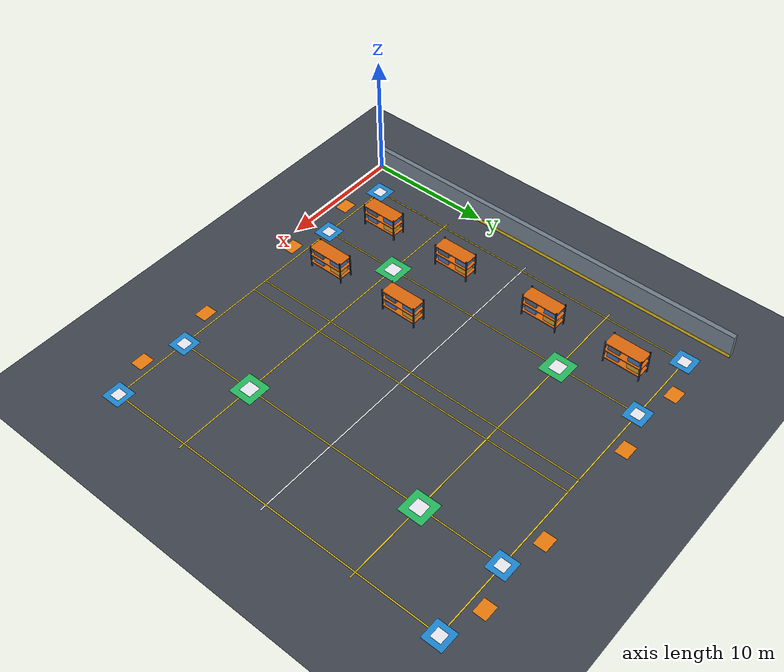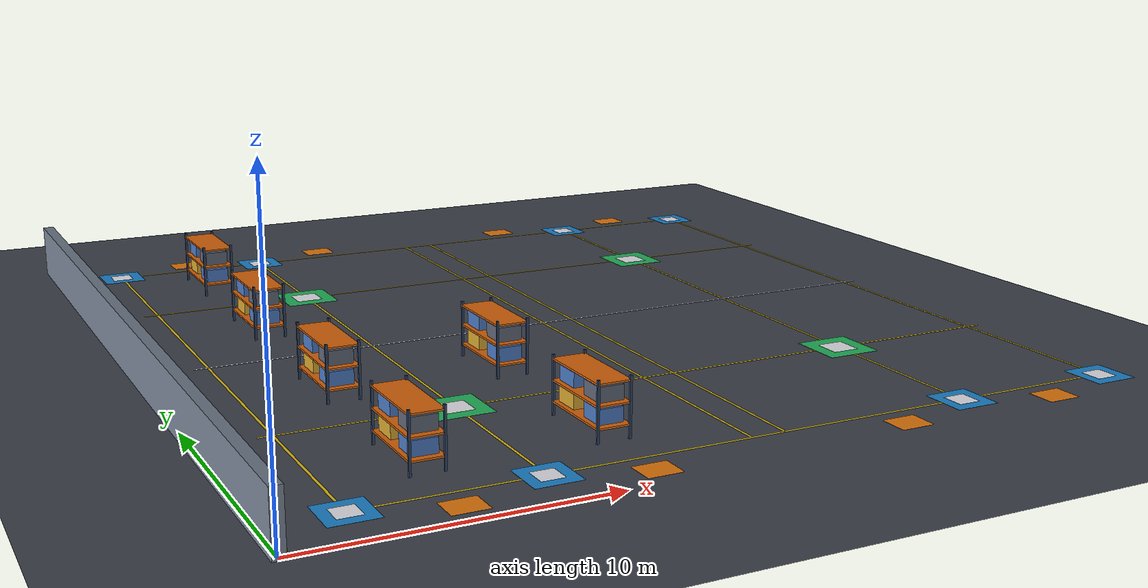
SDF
<sdf version="1.8">
 <world name="warehouse_m9_v1">
  <model name="ground_plane">
   <static>true</static>
   <pose>16.0 16.0 0.0 0 0 0</pose>
   <link name="floor_link">
    <collision name="collision">
     <geometry><plane><normal>0 0 1</normal><size>40 40</size></plane></geometry>
     <surface><friction><ode><mu>100</mu><mu2>50</mu2></ode></friction></surface>
    </collision>
    <visual name="floor_visual">
     <geometry><plane><normal>0 0 1</normal><size>40 40</size></plane></geometry>
     <material>
      <ambient>0.22 0.24 0.27 1.0</ambient>
      <diffuse>0.26 0.28 0.32 1.0</diffuse>
      <specular>0.45 0.45 0.50 1.0</specular>
     </material>
    </visual>
   </link>
  </model>
  <model name="wall_west">
   <static>true</static>
   <pose>0.0 16.0 1.0 0 0 0</pose>
   <link name="link">
    <collision name="col"><geometry><box><size>0.4 32.4 2.0</size></box></geometry></collision>
    <visual name="wall_vis">
     <geometry><box><size>0.4 32.4 2.0</size></box></geometry>
     <material><ambient>0.40 0.44 0.50 1.0</ambient><diffuse>0.45 0.50 0.56 1.0</diffuse></material>
    </visual>
    <visual name="kickplate">
     <pose>0.201 0.0 -0.85 0 0 0</pose>
     <geometry><box><size>0.02 32.38 0.30</size></box></geometry>
     <material><ambient>0.85 0.70 0.10 1.0</ambient><diffuse>0.90 0.75 0.10 1.0</diffuse></material>
    </visual>
   </link>
  </model>
  <model name="operational_zones">
   <static>true</static>
   <pose>0 0 0.003 0 0 0</pose>
   <link name="zones_link">
    <visual name="pickup_1_pad">
     <pose>2.5 2.0 0 0 0 0</pose>
     <geometry><box><size>1.6 1.6 0.002</size></box></geometry>
     <material><ambient>0.10 0.45 0.75 1.0</ambient><diffuse>0.12 0.55 0.85 1.0</diffuse></material>
    </visual>
    <visual name="pickup_1_target">
     <pose>2.5 2.0 0.001 0 0 0</pose>
     <geometry><box><size>0.80 0.80 0.002</size></box></geometry>
     <material><ambient>0.90 0.90 0.95 1.0</ambient><diffuse>0.95 0.95 0.98 1.0</diffuse></material>
    </visual>
    <visual name="pickup_2_pad">
     <pose>8.5 2.0 0 0 0 0</pose>
     <geometry><box><size>1.6 1.6 0.002</size></box></geometry>
     <material><ambient>0.10 0.45 0.75 1.0</ambient><diffuse>0.12 0.55 0.85 1.0</diffuse></material>
    </visual>
    <visual name="pickup_2_target">
     <pose>8.5 2.0 0.001 0 0 0</pose>
     <geometry><box><size>0.80 0.80 0.002</size></box></geometry>
     <material><ambient>0.90 0.90 0.95 1.0</ambient><diffuse>0.95 0.95 0.98 1.0</diffuse></material>
    </visual>
    <visual name="pickup_3_pad">
     <pose>23.5 2.0 0 0 0 0</pose>
     <geometry><box><size>1.6 1.6 0.002</size></box></geometry>
     <material><ambient>0.10 0.45 0.75 1.0</ambient><diffuse>0.12 0.55 0.85 1.0</diffuse></material>
    </visual>
    <visual name="pickup_3_target">
     <pose>23.5 2.0 0.001 0 0 0</pose>
     <geometry><box><size>0.80 0.80 0.002</size></box></geometry>
     <material><ambient>0.90 0.90 0.95 1.0</ambient><diffuse>0.95 0.95 0.98 1.0</diffuse></material>
    </visual>
    <visual name="pickup_4_pad">
     <pose>29.5 2.0 0 0 0 0</pose>
     <geometry><box><size>1.6 1.6 0.002</size></box></geometry>
     <material><ambient>0.10 0.45 0.75 1.0</ambient><diffuse>0.12 0.55 0.85 1.0</diffuse></material>
    </visual>
    <visual name="pickup_4_target">
     <pose>29.5 2.0 0.001 0 0 0</pose>
     <geometry><box><size>0.80 0.80 0.002</size></box></geometry>
     <material><ambient>0.90 0.90 0.95 1.0</ambient><diffuse>0.95 0.95 0.98 1.0</diffuse></material>
    </visual>
    <visual name="pickup_5_pad">
     <pose>2.5 30.0 0 0 0 0</pose>
     <geometry><box><size>1.6 1.6 0.002</size></box></geometry>
     <material><ambient>0.10 0.45 0.75 1.0</ambient><diffuse>0.12 0.55 0.85 1.0</diffuse></material>
    </visual>
    <visual name="pickup_5_target">
     <pose>2.5 30.0 0.001 0 0 0</pose>
     <geometry><box><size>0.80 0.80 0.002</size></box></geometry>
     <material><ambient>0.90 0.90 0.95 1.0</ambient><diffuse>0.95 0.95 0.98 1.0</diffuse></material>
    </visual>
    <visual name="pickup_6_pad">
     <pose>8.5 30.0 0 0 0 0</pose>
     <geometry><box><size>1.6 1.6 0.002</size></box></geometry>
     <material><ambient>0.10 0.45 0.75 1.0</ambient><diffuse>0.12 0.55 0.85 1.0</diffuse></material>
    </visual>
    <visual name="pickup_6_target">
     <pose>8.5 30.0 0.001 0 0 0</pose>
     <geometry><box><size>0.80 0.80 0.002</size></box></geometry>
     <material><ambient>0.90 0.90 0.95 1.0</ambient><diffuse>0.95 0.95 0.98 1.0</diffuse></material>
    </visual>
    <visual name="pickup_7_pad">
     <pose>23.5 30.0 0 0 0 0</pose>
     <geometry><box><size>1.6 1.6 0.002</size></box></geometry>
     <material><ambient>0.10 0.45 0.75 1.0</ambient><diffuse>0.12 0.55 0.85 1.0</diffuse></material>
    </visual>
    <visual name="pickup_7_target">
     <pose>23.5 30.0 0.001 0 0 0</pose>
     <geometry><box><size>0.80 0.80 0.002</size></box></geometry>
     <material><ambient>0.90 0.90 0.95 1.0</ambient><diffuse>0.95 0.95 0.98 1.0</diffuse></material>
    </visual>
    <visual name="pickup_8_pad">
     <pose>29.5 30.0 0 0 0 0</pose>
     <geometry><box><size>1.6 1.6 0.002</size></box></geometry>
     <material><ambient>0.10 0.45 0.75 1.0</ambient><diffuse>0.12 0.55 0.85 1.0</diffuse></material>
    </visual>
    <visual name="pickup_8_target">
     <pose>29.5 30.0 0.001 0 0 0</pose>
     <geometry><box><size>0.80 0.80 0.002</size></box></geometry>
     <material><ambient>0.90 0.90 0.95 1.0</ambient><diffuse>0.95 0.95 0.98 1.0</diffuse></material>
    </visual>
    <visual name="dropoff_1_zone">
     <pose>8.5 8.5 0 0 0 0</pose>
     <geometry><box><size>2.0 2.0 0.002</size></box></geometry>
     <material><ambient>0.12 0.65 0.32 1.0</ambient><diffuse>0.15 0.75 0.38 1.0</diffuse></material>
    </visual>
    <visual name="dropoff_1_center">
     <pose>8.5 8.5 0.001 0 0 0</pose>
     <geometry><box><size>1.0 1.0 0.002</size></box></geometry>
     <material><ambient>0.90 0.90 0.92 1.0</ambient><diffuse>0.95 0.95 0.98 1.0</diffuse></material>
    </visual>
    <visual name="dropoff_2_zone">
     <pose>8.5 23.5 0 0 0 0</pose>
     <geometry><box><size>2.0 2.0 0.002</size></box></geometry>
     <material><ambient>0.12 0.65 0.32 1.0</ambient><diffuse>0.15 0.75 0.38 1.0</diffuse></material>
    </visual>
    <visual name="dropoff_2_center">
     <pose>8.5 23.5 0.001 0 0 0</pose>
     <geometry><box><size>1.0 1.0 0.002</size></box></geometry>
     <material><ambient>0.90 0.90 0.92 1.0</ambient><diffuse>0.95 0.95 0.98 1.0</diffuse></material>
    </visual>
    <visual name="dropoff_3_zone">
     <pose>23.5 8.5 0 0 0 0</pose>
     <geometry><box><size>2.0 2.0 0.002</size></box></geometry>
     <material><ambient>0.12 0.65 0.32 1.0</ambient><diffuse>0.15 0.75 0.38 1.0</diffuse></material>
    </visual>
    <visual name="dropoff_3_center">
     <pose>23.5 8.5 0.001 0 0 0</pose>
     <geometry><box><size>1.0 1.0 0.002</size></box></geometry>
     <material><ambient>0.90 0.90 0.92 1.0</ambient><diffuse>0.95 0.95 0.98 1.0</diffuse></material>
    </visual>
    <visual name="dropoff_4_zone">
     <pose>23.5 23.5 0 0 0 0</pose>
     <geometry><box><size>2.0 2.0 0.002</size></box></geometry>
     <material><ambient>0.12 0.65 0.32 1.0</ambient><diffuse>0.15 0.75 0.38 1.0</diffuse></material>
    </visual>
    <visual name="dropoff_4_center">
     <pose>23.5 23.5 0.001 0 0 0</pose>
     <geometry><box><size>1.0 1.0 0.002</size></box></geometry>
     <material><ambient>0.90 0.90 0.92 1.0</ambient><diffuse>0.95 0.95 0.98 1.0</diffuse></material>
    </visual>
    <visual name="charge_pad_1">
     <pose>5.5 1.0 0 0 0 0</pose>
     <geometry><box><size>1.2 1.0 0.002</size></box></geometry>
     <material><ambient>0.85 0.45 0.05 1.0</ambient><diffuse>0.95 0.50 0.05 1.0</diffuse></material>
    </visual>
    <visual name="charge_pad_2">
     <pose>11.5 1.0 0 0 0 0</pose>
     <geometry><box><size>1.2 1.0 0.002</size></box></geometry>
     <material><ambient>0.85 0.45 0.05 1.0</ambient><diffuse>0.95 0.50 0.05 1.0</diffuse></material>
    </visual>
    <visual name="charge_pad_3">
     <pose>20.5 1.0 0 0 0 0</pose>
     <geometry><box><size>1.2 1.0 0.002</size></box></geometry>
     <material><ambient>0.85 0.45 0.05 1.0</ambient><diffuse>0.95 0.50 0.05 1.0</diffuse></material>
    </visual>
    <visual name="charge_pad_4">
     <pose>26.5 1.0 0 0 0 0</pose>
     <geometry><box><size>1.2 1.0 0.002</size></box></geometry>
     <material><ambient>0.85 0.45 0.05 1.0</ambient><diffuse>0.95 0.50 0.05 1.0</diffuse></material>
    </visual>
    <visual name="charge_pad_5">
     <pose>5.5 31.0 0 0 0 0</pose>
     <geometry><box><size>1.2 1.0 0.002</size></box></geometry>
     <material><ambient>0.85 0.45 0.05 1.0</ambient><diffuse>0.95 0.50 0.05 1.0</diffuse></material>
    </visual>
    <visual name="charge_pad_6">
     <pose>11.5 31.0 0 0 0 0</pose>
     <geometry><box><size>1.2 1.0 0.002</size></box></geometry>
     <material><ambient>0.85 0.45 0.05 1.0</ambient><diffuse>0.95 0.50 0.05 1.0</diffuse></material>
    </visual>
    <visual name="charge_pad_7">
     <pose>20.5 31.0 0 0 0 0</pose>
     <geometry><box><size>1.2 1.0 0.002</size></box></geometry>
     <material><ambient>0.85 0.45 0.05 1.0</ambient><diffuse>0.95 0.50 0.05 1.0</diffuse></material>
    </visual>
    <visual name="charge_pad_8">
     <pose>26.5 31.0 0 0 0 0</pose>
     <geometry><box><size>1.2 1.0 0.002</size></box></geometry>
     <material><ambient>0.85 0.45 0.05 1.0</ambient><diffuse>0.95 0.50 0.05 1.0</diffuse></material>
    </visual>
   </link>
  </model>
  <model name="warehouse_lanes">
   <static>true</static>
   <pose>0 0 0.002 0 0 0</pose>
   <link name="markings_link">
    <visual name="lane_aisle_1">
     <pose>2.5 16.0 0 0 0 0</pose>
     <geometry><box><size>0.10 28.0 0.001</size></box></geometry>
     <material><ambient>0.88 0.72 0.08 1.0</ambient><diffuse>0.92 0.78 0.10 1.0</diffuse></material>
    </visual>
    <visual name="lane_aisle_2">
     <pose>8.5 16.0 0 0 0 0</pose>
     <geometry><box><size>0.10 28.0 0.001</size></box></geometry>
     <material><ambient>0.88 0.72 0.08 1.0</ambient><diffuse>0.92 0.78 0.10 1.0</diffuse></material>
    </visual>
    <visual name="lane_aisle_3_left">
     <pose>15.4 16.0 0 0 0 0</pose>
     <geometry><box><size>0.10 28.0 0.001</size></box></geometry>
     <material><ambient>0.88 0.72 0.08 1.0</ambient><diffuse>0.92 0.78 0.10 1.0</diffuse></material>
    </visual>
    <visual name="lane_aisle_3_right">
     <pose>16.6 16.0 0 0 0 0</pose>
     <geometry><box><size>0.10 28.0 0.001</size></box></geometry>
     <material><ambient>0.88 0.72 0.08 1.0</ambient><diffuse>0.92 0.78 0.10 1.0</diffuse></material>
    </visual>
    <visual name="lane_aisle_4">
     <pose>23.5 16.0 0 0 0 0</pose>
     <geometry><box><size>0.10 28.0 0.001</size></box></geometry>
     <material><ambient>0.88 0.72 0.08 1.0</ambient><diffuse>0.92 0.78 0.10 1.0</diffuse></material>
    </visual>
    <visual name="lane_aisle_5">
     <pose>29.5 16.0 0 0 0 0</pose>
     <geometry><box><size>0.10 28.0 0.001</size></box></geometry>
     <material><ambient>0.88 0.72 0.08 1.0</ambient><diffuse>0.92 0.78 0.10 1.0</diffuse></material>
    </visual>
    <visual name="cross_south">
     <pose>16.0 2.0 0 0 0 0</pose>
     <geometry><box><size>28.0 0.10 0.001</size></box></geometry>
     <material><ambient>0.88 0.72 0.08 1.0</ambient><diffuse>0.92 0.78 0.10 1.0</diffuse></material>
    </visual>
    <visual name="cross_mid_south">
     <pose>16.0 8.5 0 0 0 0</pose>
     <geometry><box><size>28.0 0.10 0.001</size></box></geometry>
     <material><ambient>0.88 0.72 0.08 1.0</ambient><diffuse>0.92 0.78 0.10 1.0</diffuse></material>
    </visual>
    <visual name="cross_center">
     <pose>16.0 16.0 0 0 0 0</pose>
     <geometry><box><size>28.0 0.10 0.001</size></box></geometry>
     <material><ambient>0.90 0.90 0.92 1.0</ambient><diffuse>0.95 0.95 0.98 1.0</diffuse></material>
    </visual>
    <visual name="cross_mid_north">
     <pose>16.0 23.5 0 0 0 0</pose>
     <geometry><box><size>28.0 0.10 0.001</size></box></geometry>
     <material><ambient>0.88 0.72 0.08 1.0</ambient><diffuse>0.92 0.78 0.10 1.0</diffuse></material>
    </visual>
    <visual name="cross_north">
     <pose>16.0 30.0 0 0 0 0</pose>
     <geometry><box><size>28.0 0.10 0.001</size></box></geometry>
     <material><ambient>0.88 0.72 0.08 1.0</ambient><diffuse>0.92 0.78 0.10 1.0</diffuse></material>
    </visual>
   </link>
  </model>
  <model name="rack_1">
   <static>true</static>
   <pose>5.5 5.0 1.0 0 0 0</pose>
   <link name="link">
    <collision name="col"><geometry><box><size>1.2 3.0 2.0</size></box></geometry></collision>
    <visual name="frame_fl">
     <pose>-0.55 -1.45 0 0 0 0</pose>
     <geometry><box><size>0.08 0.08 2.0</size></box></geometry>
     <material><ambient>0.15 0.22 0.32 1.0</ambient><diffuse>0.18 0.26 0.38 1.0</diffuse></material>
    </visual>
    <visual name="frame_fr">
     <pose>0.55 -1.45 0 0 0 0</pose>
     <geometry><box><size>0.08 0.08 2.0</size></box></geometry>
     <material><ambient>0.15 0.22 0.32 1.0</ambient><diffuse>0.18 0.26 0.38 1.0</diffuse></material>
    </visual>
    <visual name="frame_rl">
     <pose>-0.55 1.45 0 0 0 0</pose>
     <geometry><box><size>0.08 0.08 2.0</size></box></geometry>
     <material><ambient>0.15 0.22 0.32 1.0</ambient><diffuse>0.18 0.26 0.38 1.0</diffuse></material>
    </visual>
    <visual name="frame_rr">
     <pose>0.55 1.45 0 0 0 0</pose>
     <geometry><box><size>0.08 0.08 2.0</size></box></geometry>
     <material><ambient>0.15 0.22 0.32 1.0</ambient><diffuse>0.18 0.26 0.38 1.0</diffuse></material>
    </visual>
    <visual name="shelf_tier1">
     <pose>0 0 -0.55 0 0 0</pose>
     <geometry><box><size>1.16 2.96 0.06</size></box></geometry>
     <material><ambient>0.85 0.38 0.05 1.0</ambient><diffuse>0.90 0.42 0.05 1.0</diffuse></material>
    </visual>
    <visual name="shelf_tier2">
     <pose>0 0 0.15 0 0 0</pose>
     <geometry><box><size>1.16 2.96 0.06</size></box></geometry>
     <material><ambient>0.85 0.38 0.05 1.0</ambient><diffuse>0.90 0.42 0.05 1.0</diffuse></material>
    </visual>
    <visual name="shelf_tier3">
     <pose>0 0 0.85 0 0 0</pose>
     <geometry><box><size>1.16 2.96 0.06</size></box></geometry>
     <material><ambient>0.85 0.38 0.05 1.0</ambient><diffuse>0.90 0.42 0.05 1.0</diffuse></material>
    </visual>
    <visual name="cargo_1">
     <pose>0 -0.8 -0.25 0 0 0</pose>
     <geometry><box><size>0.85 0.95 0.50</size></box></geometry>
     <material><ambient>0.25 0.40 0.65 1.0</ambient><diffuse>0.28 0.45 0.72 1.0</diffuse></material>
    </visual>
    <visual name="cargo_2">
     <pose>0 0.8 -0.25 0 0 0</pose>
     <geometry><box><size>0.85 0.95 0.50</size></box></geometry>
     <material><ambient>0.70 0.55 0.15 1.0</ambient><diffuse>0.80 0.62 0.18 1.0</diffuse></material>
    </visual>
    <visual name="cargo_3">
     <pose>0 -0.8 0.45 0 0 0</pose>
     <geometry><box><size>0.85 0.95 0.50</size></box></geometry>
     <material><ambient>0.30 0.34 0.38 1.0</ambient><diffuse>0.35 0.38 0.44 1.0</diffuse></material>
    </visual>
    <visual name="cargo_4">
     <pose>0 0.8 0.45 0 0 0</pose>
     <geometry><box><size>0.85 0.95 0.50</size></box></geometry>
     <material><ambient>0.25 0.40 0.65 1.0</ambient><diffuse>0.28 0.45 0.72 1.0</diffuse></material>
    </visual>
   </link>
  </model>
  <model name="rack_2">
   <static>true</static>
   <pose>11.5 5.0 1.0 0 0 0</pose>
   <link name="link">
    <collision name="col"><geometry><box><size>1.2 3.0 2.0</size></box></geometry></collision>
    <visual name="frame_fl">
     <pose>-0.55 -1.45 0 0 0 0</pose>
     <geometry><box><size>0.08 0.08 2.0</size></box></geometry>
     <material><ambient>0.15 0.22 0.32 1.0</ambient><diffuse>0.18 0.26 0.38 1.0</diffuse></material>
    </visual>
    <visual name="frame_fr">
     <pose>0.55 -1.45 0 0 0 0</pose>
     <geometry><box><size>0.08 0.08 2.0</size></box></geometry>
     <material><ambient>0.15 0.22 0.32 1.0</ambient><diffuse>0.18 0.26 0.38 1.0</diffuse></material>
    </visual>
    <visual name="frame_rl">
     <pose>-0.55 1.45 0 0 0 0</pose>
     <geometry><box><size>0.08 0.08 2.0</size></box></geometry>
     <material><ambient>0.15 0.22 0.32 1.0</ambient><diffuse>0.18 0.26 0.38 1.0</diffuse></material>
    </visual>
    <visual name="frame_rr">
     <pose>0.55 1.45 0 0 0 0</pose>
     <geometry><box><size>0.08 0.08 2.0</size></box></geometry>
     <material><ambient>0.15 0.22 0.32 1.0</ambient><diffuse>0.18 0.26 0.38 1.0</diffuse></material>
    </visual>
    <visual name="shelf_tier1">
     <pose>0 0 -0.55 0 0 0</pose>
     <geometry><box><size>1.16 2.96 0.06</size></box></geometry>
     <material><ambient>0.85 0.38 0.05 1.0</ambient><diffuse>0.90 0.42 0.05 1.0</diffuse></material>
    </visual>
    <visual name="shelf_tier2">
     <pose>0 0 0.15 0 0 0</pose>
     <geometry><box><size>1.16 2.96 0.06</size></box></geometry>
     <material><ambient>0.85 0.38 0.05 1.0</ambient><diffuse>0.90 0.42 0.05 1.0</diffuse></material>
    </visual>
    <visual name="shelf_tier3">
     <pose>0 0 0.85 0 0 0</pose>
     <geometry><box><size>1.16 2.96 0.06</size></box></geometry>
     <material><ambient>0.85 0.38 0.05 1.0</ambient><diffuse>0.90 0.42 0.05 1.0</diffuse></material>
    </visual>
    <visual name="cargo_1">
     <pose>0 -0.8 -0.25 0 0 0</pose>
     <geometry><box><size>0.85 0.95 0.50</size></box></geometry>
     <material><ambient>0.25 0.40 0.65 1.0</ambient><diffuse>0.28 0.45 0.72 1.0</diffuse></material>
    </visual>
    <visual name="cargo_2">
     <pose>0 0.8 -0.25 0 0 0</pose>
     <geometry><box><size>0.85 0.95 0.50</size></box></geometry>
     <material><ambient>0.70 0.55 0.15 1.0</ambient><diffuse>0.80 0.62 0.18 1.0</diffuse></material>
    </visual>
    <visual name="cargo_3">
     <pose>0 -0.8 0.45 0 0 0</pose>
     <geometry><box><size>0.85 0.95 0.50</size></box></geometry>
     <material><ambient>0.30 0.34 0.38 1.0</ambient><diffuse>0.35 0.38 0.44 1.0</diffuse></material>
    </visual>
    <visual name="cargo_4">
     <pose>0 0.8 0.45 0 0 0</pose>
     <geometry><box><size>0.85 0.95 0.50</size></box></geometry>
     <material><ambient>0.25 0.40 0.65 1.0</ambient><diffuse>0.28 0.45 0.72 1.0</diffuse></material>
    </visual>
   </link>
  </model>
  <model name="rack_5">
   <static>true</static>
   <pose>5.5 12.0 1.0 0 0 0</pose>
   <link name="link">
    <collision name="col"><geometry><box><size>1.2 3.0 2.0</size></box></geometry></collision>
    <visual name="frame_fl">
     <pose>-0.55 -1.45 0 0 0 0</pose>
     <geometry><box><size>0.08 0.08 2.0</size></box></geometry>
     <material><ambient>0.15 0.22 0.32 1.0</ambient><diffuse>0.18 0.26 0.38 1.0</diffuse></material>
    </visual>
    <visual name="frame_fr">
     <pose>0.55 -1.45 0 0 0 0</pose>
     <geometry><box><size>0.08 0.08 2.0</size></box></geometry>
     <material><ambient>0.15 0.22 0.32 1.0</ambient><diffuse>0.18 0.26 0.38 1.0</diffuse></material>
    </visual>
    <visual name="frame_rl">
     <pose>-0.55 1.45 0 0 0 0</pose>
     <geometry><box><size>0.08 0.08 2.0</size></box></geometry>
     <material><ambient>0.15 0.22 0.32 1.0</ambient><diffuse>0.18 0.26 0.38 1.0</diffuse></material>
    </visual>
    <visual name="frame_rr">
     <pose>0.55 1.45 0 0 0 0</pose>
     <geometry><box><size>0.08 0.08 2.0</size></box></geometry>
     <material><ambient>0.15 0.22 0.32 1.0</ambient><diffuse>0.18 0.26 0.38 1.0</diffuse></material>
    </visual>
    <visual name="shelf_tier1">
     <pose>0 0 -0.55 0 0 0</pose>
     <geometry><box><size>1.16 2.96 0.06</size></box></geometry>
     <material><ambient>0.85 0.38 0.05 1.0</ambient><diffuse>0.90 0.42 0.05 1.0</diffuse></material>
    </visual>
    <visual name="shelf_tier2">
     <pose>0 0 0.15 0 0 0</pose>
     <geometry><box><size>1.16 2.96 0.06</size></box></geometry>
     <material><ambient>0.85 0.38 0.05 1.0</ambient><diffuse>0.90 0.42 0.05 1.0</diffuse></material>
    </visual>
    <visual name="shelf_tier3">
     <pose>0 0 0.85 0 0 0</pose>
     <geometry><box><size>1.16 2.96 0.06</size></box></geometry>
     <material><ambient>0.85 0.38 0.05 1.0</ambient><diffuse>0.90 0.42 0.05 1.0</diffuse></material>
    </visual>
    <visual name="cargo_1">
     <pose>0 -0.8 -0.25 0 0 0</pose>
     <geometry><box><size>0.85 0.95 0.50</size></box></geometry>
     <material><ambient>0.25 0.40 0.65 1.0</ambient><diffuse>0.28 0.45 0.72 1.0</diffuse></material>
    </visual>
    <visual name="cargo_2">
     <pose>0 0.8 -0.25 0 0 0</pose>
     <geometry><box><size>0.85 0.95 0.50</size></box></geometry>
     <material><ambient>0.70 0.55 0.15 1.0</ambient><diffuse>0.80 0.62 0.18 1.0</diffuse></material>
    </visual>
    <visual name="cargo_3">
     <pose>0 -0.8 0.45 0 0 0</pose>
     <geometry><box><size>0.85 0.95 0.50</size></box></geometry>
     <material><ambient>0.30 0.34 0.38 1.0</ambient><diffuse>0.35 0.38 0.44 1.0</diffuse></material>
    </visual>
    <visual name="cargo_4">
     <pose>0 0.8 0.45 0 0 0</pose>
     <geometry><box><size>0.85 0.95 0.50</size></box></geometry>
     <material><ambient>0.25 0.40 0.65 1.0</ambient><diffuse>0.28 0.45 0.72 1.0</diffuse></material>
    </visual>
   </link>
  </model>
  <model name="rack_6">
   <static>true</static>
   <pose>11.5 12.0 1.0 0 0 0</pose>
   <link name="link">
    <collision name="col"><geometry><box><size>1.2 3.0 2.0</size></box></geometry></collision>
    <visual name="frame_fl">
     <pose>-0.55 -1.45 0 0 0 0</pose>
     <geometry><box><size>0.08 0.08 2.0</size></box></geometry>
     <material><ambient>0.15 0.22 0.32 1.0</ambient><diffuse>0.18 0.26 0.38 1.0</diffuse></material>
    </visual>
    <visual name="frame_fr">
     <pose>0.55 -1.45 0 0 0 0</pose>
     <geometry><box><size>0.08 0.08 2.0</size></box></geometry>
     <material><ambient>0.15 0.22 0.32 1.0</ambient><diffuse>0.18 0.26 0.38 1.0</diffuse></material>
    </visual>
    <visual name="frame_rl">
     <pose>-0.55 1.45 0 0 0 0</pose>
     <geometry><box><size>0.08 0.08 2.0</size></box></geometry>
     <material><ambient>0.15 0.22 0.32 1.0</ambient><diffuse>0.18 0.26 0.38 1.0</diffuse></material>
    </visual>
    <visual name="frame_rr">
     <pose>0.55 1.45 0 0 0 0</pose>
     <geometry><box><size>0.08 0.08 2.0</size></box></geometry>
     <material><ambient>0.15 0.22 0.32 1.0</ambient><diffuse>0.18 0.26 0.38 1.0</diffuse></material>
    </visual>
    <visual name="shelf_tier1">
     <pose>0 0 -0.55 0 0 0</pose>
     <geometry><box><size>1.16 2.96 0.06</size></box></geometry>
     <material><ambient>0.85 0.38 0.05 1.0</ambient><diffuse>0.90 0.42 0.05 1.0</diffuse></material>
    </visual>
    <visual name="shelf_tier2">
     <pose>0 0 0.15 0 0 0</pose>
     <geometry><box><size>1.16 2.96 0.06</size></box></geometry>
     <material><ambient>0.85 0.38 0.05 1.0</ambient><diffuse>0.90 0.42 0.05 1.0</diffuse></material>
    </visual>
    <visual name="shelf_tier3">
     <pose>0 0 0.85 0 0 0</pose>
     <geometry><box><size>1.16 2.96 0.06</size></box></geometry>
     <material><ambient>0.85 0.38 0.05 1.0</ambient><diffuse>0.90 0.42 0.05 1.0</diffuse></material>
    </visual>
    <visual name="cargo_1">
     <pose>0 -0.8 -0.25 0 0 0</pose>
     <geometry><box><size>0.85 0.95 0.50</size></box></geometry>
     <material><ambient>0.25 0.40 0.65 1.0</ambient><diffuse>0.28 0.45 0.72 1.0</diffuse></material>
    </visual>
    <visual name="cargo_2">
     <pose>0 0.8 -0.25 0 0 0</pose>
     <geometry><box><size>0.85 0.95 0.50</size></box></geometry>
     <material><ambient>0.70 0.55 0.15 1.0</ambient><diffuse>0.80 0.62 0.18 1.0</diffuse></material>
    </visual>
    <visual name="cargo_3">
     <pose>0 -0.8 0.45 0 0 0</pose>
     <geometry><box><size>0.85 0.95 0.50</size></box></geometry>
     <material><ambient>0.30 0.34 0.38 1.0</ambient><diffuse>0.35 0.38 0.44 1.0</diffuse></material>
    </visual>
    <visual name="cargo_4">
     <pose>0 0.8 0.45 0 0 0</pose>
     <geometry><box><size>0.85 0.95 0.50</size></box></geometry>
     <material><ambient>0.25 0.40 0.65 1.0</ambient><diffuse>0.28 0.45 0.72 1.0</diffuse></material>
    </visual>
   </link>
  </model>
  <model name="rack_9">
   <static>true</static>
   <pose>5.5 20.0 1.0 0 0 0</pose>
   <link name="link">
    <collision name="col"><geometry><box><size>1.2 3.0 2.0</size></box></geometry></collision>
    <visual name="frame_fl">
     <pose>-0.55 -1.45 0 0 0 0</pose>
     <geometry><box><size>0.08 0.08 2.0</size></box></geometry>
     <material><ambient>0.15 0.22 0.32 1.0</ambient><diffuse>0.18 0.26 0.38 1.0</diffuse></material>
    </visual>
    <visual name="frame_fr">
     <pose>0.55 -1.45 0 0 0 0</pose>
     <geometry><box><size>0.08 0.08 2.0</size></box></geometry>
     <material><ambient>0.15 0.22 0.32 1.0</ambient><diffuse>0.18 0.26 0.38 1.0</diffuse></material>
    </visual>
    <visual name="frame_rl">
     <pose>-0.55 1.45 0 0 0 0</pose>
     <geometry><box><size>0.08 0.08 2.0</size></box></geometry>
     <material><ambient>0.15 0.22 0.32 1.0</ambient><diffuse>0.18 0.26 0.38 1.0</diffuse></material>
    </visual>
    <visual name="frame_rr">
     <pose>0.55 1.45 0 0 0 0</pose>
     <geometry><box><size>0.08 0.08 2.0</size></box></geometry>
     <material><ambient>0.15 0.22 0.32 1.0</ambient><diffuse>0.18 0.26 0.38 1.0</diffuse></material>
    </visual>
    <visual name="shelf_tier1">
     <pose>0 0 -0.55 0 0 0</pose>
     <geometry><box><size>1.16 2.96 0.06</size></box></geometry>
     <material><ambient>0.85 0.38 0.05 1.0</ambient><diffuse>0.90 0.42 0.05 1.0</diffuse></material>
    </visual>
    <visual name="shelf_tier2">
     <pose>0 0 0.15 0 0 0</pose>
     <geometry><box><size>1.16 2.96 0.06</size></box></geometry>
     <material><ambient>0.85 0.38 0.05 1.0</ambient><diffuse>0.90 0.42 0.05 1.0</diffuse></material>
    </visual>
    <visual name="shelf_tier3">
     <pose>0 0 0.85 0 0 0</pose>
     <geometry><box><size>1.16 2.96 0.06</size></box></geometry>
     <material><ambient>0.85 0.38 0.05 1.0</ambient><diffuse>0.90 0.42 0.05 1.0</diffuse></material>
    </visual>
    <visual name="cargo_1">
     <pose>0 -0.8 -0.25 0 0 0</pose>
     <geometry><box><size>0.85 0.95 0.50</size></box></geometry>
     <material><ambient>0.25 0.40 0.65 1.0</ambient><diffuse>0.28 0.45 0.72 1.0</diffuse></material>
    </visual>
    <visual name="cargo_2">
     <pose>0 0.8 -0.25 0 0 0</pose>
     <geometry><box><size>0.85 0.95 0.50</size></box></geometry>
     <material><ambient>0.70 0.55 0.15 1.0</ambient><diffuse>0.80 0.62 0.18 1.0</diffuse></material>
    </visual>
    <visual name="cargo_3">
     <pose>0 -0.8 0.45 0 0 0</pose>
     <geometry><box><size>0.85 0.95 0.50</size></box></geometry>
     <material><ambient>0.30 0.34 0.38 1.0</ambient><diffuse>0.35 0.38 0.44 1.0</diffuse></material>
    </visual>
    <visual name="cargo_4">
     <pose>0 0.8 0.45 0 0 0</pose>
     <geometry><box><size>0.85 0.95 0.50</size></box></geometry>
     <material><ambient>0.25 0.40 0.65 1.0</ambient><diffuse>0.28 0.45 0.72 1.0</diffuse></material>
    </visual>
   </link>
  </model>
  <model name="rack_13">
   <static>true</static>
   <pose>5.5 27.0 1.0 0 0 0</pose>
   <link name="link">
    <collision name="col"><geometry><box><size>1.2 3.0 2.0</size></box></geometry></collision>
    <visual name="frame_fl">
     <pose>-0.55 -1.45 0 0 0 0</pose>
     <geometry><box><size>0.08 0.08 2.0</size></box></geometry>
     <material><ambient>0.15 0.22 0.32 1.0</ambient><diffuse>0.18 0.26 0.38 1.0</diffuse></material>
    </visual>
    <visual name="frame_fr">
     <pose>0.55 -1.45 0 0 0 0</pose>
     <geometry><box><size>0.08 0.08 2.0</size></box></geometry>
     <material><ambient>0.15 0.22 0.32 1.0</ambient><diffuse>0.18 0.26 0.38 1.0</diffuse></material>
    </visual>
    <visual name="frame_rl">
     <pose>-0.55 1.45 0 0 0 0</pose>
     <geometry><box><size>0.08 0.08 2.0</size></box></geometry>
     <material><ambient>0.15 0.22 0.32 1.0</ambient><diffuse>0.18 0.26 0.38 1.0</diffuse></material>
    </visual>
    <visual name="frame_rr">
     <pose>0.55 1.45 0 0 0 0</pose>
     <geometry><box><size>0.08 0.08 2.0</size></box></geometry>
     <material><ambient>0.15 0.22 0.32 1.0</ambient><diffuse>0.18 0.26 0.38 1.0</diffuse></material>
    </visual>
    <visual name="shelf_tier1">
     <pose>0 0 -0.55 0 0 0</pose>
     <geometry><box><size>1.16 2.96 0.06</size></box></geometry>
     <material><ambient>0.85 0.38 0.05 1.0</ambient><diffuse>0.90 0.42 0.05 1.0</diffuse></material>
    </visual>
    <visual name="shelf_tier2">
     <pose>0 0 0.15 0 0 0</pose>
     <geometry><box><size>1.16 2.96 0.06</size></box></geometry>
     <material><ambient>0.85 0.38 0.05 1.0</ambient><diffuse>0.90 0.42 0.05 1.0</diffuse></material>
    </visual>
    <visual name="shelf_tier3">
     <pose>0 0 0.85 0 0 0</pose>
     <geometry><box><size>1.16 2.96 0.06</size></box></geometry>
     <material><ambient>0.85 0.38 0.05 1.0</ambient><diffuse>0.90 0.42 0.05 1.0</diffuse></material>
    </visual>
    <visual name="cargo_1">
     <pose>0 -0.8 -0.25 0 0 0</pose>
     <geometry><box><size>0.85 0.95 0.50</size></box></geometry>
     <material><ambient>0.25 0.40 0.65 1.0</ambient><diffuse>0.28 0.45 0.72 1.0</diffuse></material>
    </visual>
    <visual name="cargo_2">
     <pose>0 0.8 -0.25 0 0 0</pose>
     <geometry><box><size>0.85 0.95 0.50</size></box></geometry>
     <material><ambient>0.70 0.55 0.15 1.0</ambient><diffuse>0.80 0.62 0.18 1.0</diffuse></material>
    </visual>
    <visual name="cargo_3">
     <pose>0 -0.8 0.45 0 0 0</pose>
     <geometry><box><size>0.85 0.95 0.50</size></box></geometry>
     <material><ambient>0.30 0.34 0.38 1.0</ambient><diffuse>0.35 0.38 0.44 1.0</diffuse></material>
    </visual>
    <visual name="cargo_4">
     <pose>0 0.8 0.45 0 0 0</pose>
     <geometry><box><size>0.85 0.95 0.50</size></box></geometry>
     <material><ambient>0.25 0.40 0.65 1.0</ambient><diffuse>0.28 0.45 0.72 1.0</diffuse></material>
    </visual>
   </link>
  </model>
 </world>
</sdf>
